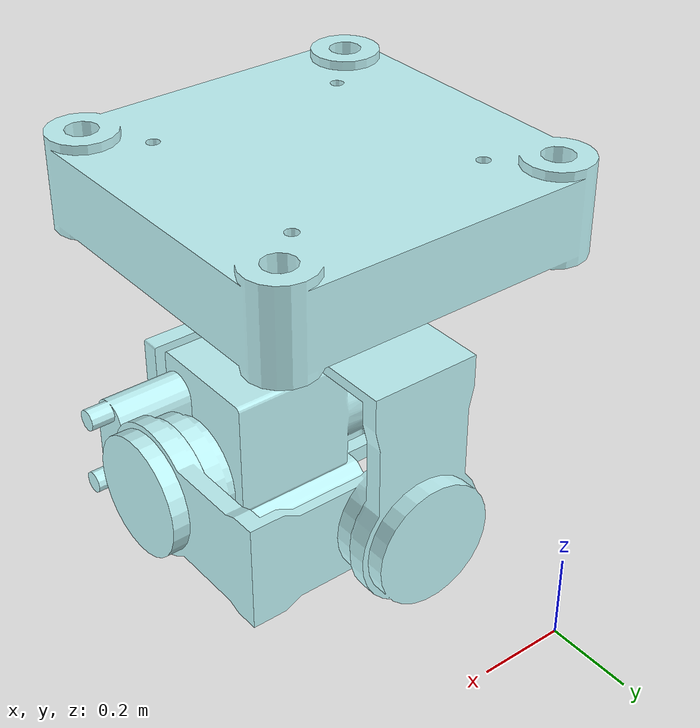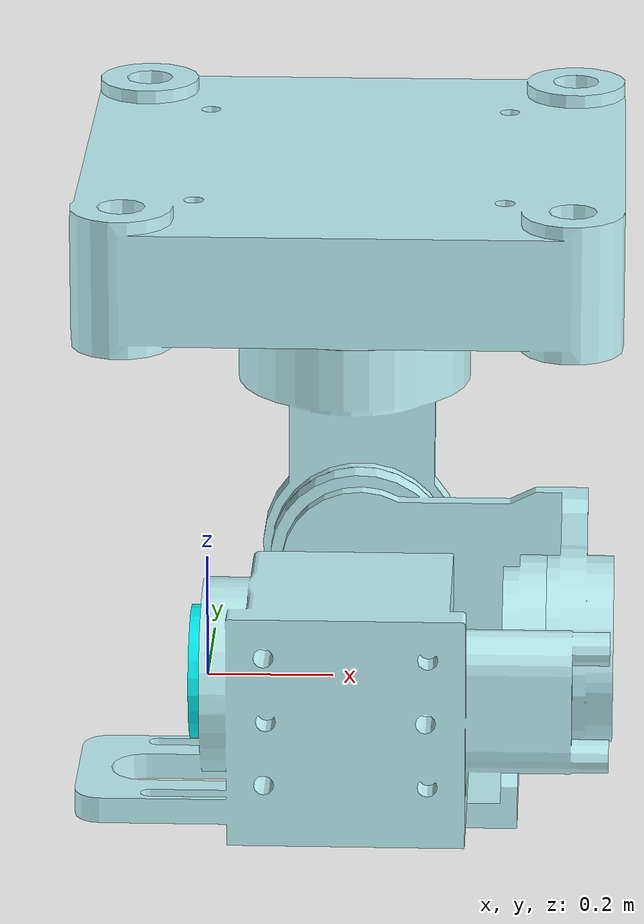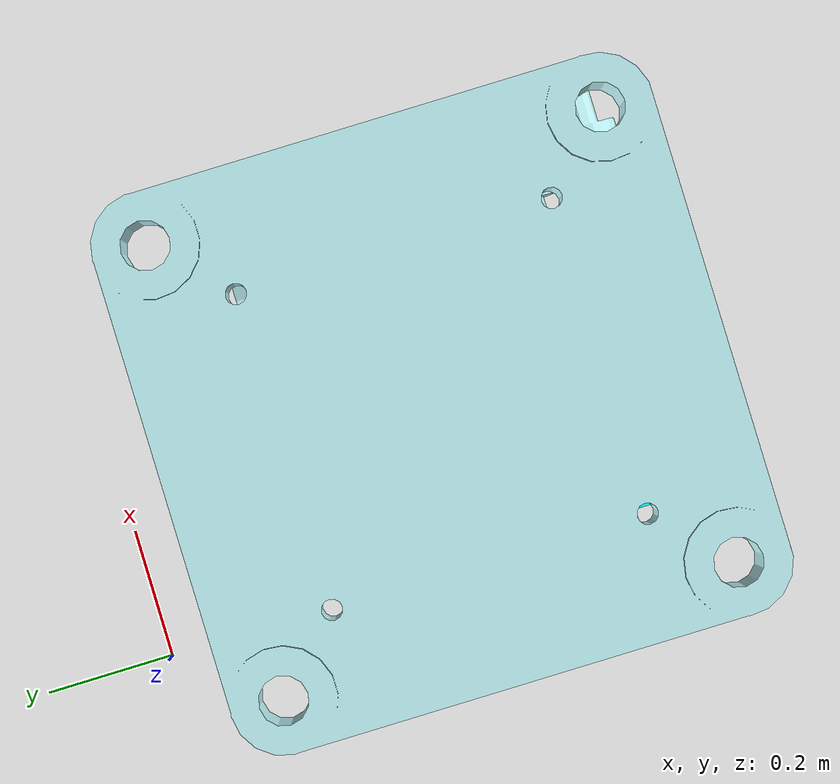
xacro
<?xml version="1.0"?>
<robot xmlns:xacro="http://www.ros.org/wiki/xacro" name="test">

   <link name="world"/>

    <link name="base_link">
        <inertial>
            <origin xyz="0.0 0.0 0.0" rpy="0.0 0.0 0.0"/>
            <mass value="0.0"/>
            <inertia ixx="0.0" ixy="0.0" ixz="0.0" iyy="0.0" iyz="0.0" izz="0.0"/>
        </inertial>
        <visual name="">
            <origin xyz="0.0 0 0.0" rpy="0.0 0.0 0.0"/>
            <geometry>
                <mesh filename="package://gimbal_urdf/meshes/base_link2.STL" scale="10 10 10"/>
            </geometry>
            <material name="">
                <color rgba="0.757 0.969 0.98 1"/>
                <texture filename=""/>
            </material>
        </visual>
        <collision>
            <origin xyz="0.0 0.0 0.0" rpy="0.0 0.0 0.0"/>
            <geometry>
                <mesh filename="package://gimbal_urdf/meshes/base_link2.STL" scale="10 10 10"/>
            </geometry>
        </collision>
    </link>

    <joint name="base_joint" type="fixed">
        <origin xyz="0.0 0.0 0.3" rpy="-0 0 -0.0"/>
        <parent link="world"/>
        <child link="base_link"/>
        <calibration rising="0.0"/>
        <dynamics damping="0.0" friction="0.0"/>
        <limit lower="-3.14" upper="3.14" effort="30" velocity="1.0"/>

    </joint>

    <link name="1st_link">
        <inertial>
            <origin xyz="0.0 0.0 0.0" rpy="0.0 0.0 0.0"/>
            <mass value="0.0"/>
            <inertia ixx="0.0" ixy="0.0" ixz="0.0" iyy="0.0" iyz="0.0" izz="0.0"/>
        </inertial>
        <visual name="">
            <origin xyz="0 0 0.0 " rpy="0.0 0.0 0.0"/>
            <geometry>
                <mesh filename="package://gimbal_urdf/meshes/1st_link2.STL" scale="10 10 10"/>
            </geometry>
            <material name="">
                <color rgba="0.757 0.969 0.98 1"/>
                <texture filename=""/>
            </material>
        </visual>
        <collision>
            <origin xyz="0.0 0.0 0.0" rpy="0.0 0.0 0.0"/>
            <geometry>
                <mesh filename="package://gimbal_urdf/meshes/1st_link2.STL" scale="10 10 10"/>
            </geometry>
        </collision>
    </link>

    <joint name="1st_to_base" type="revolute">
        <origin xyz="0.253 -0.5045 0.482" rpy="1.57079632 0 -1.57079632"/>
        <parent link="base_link"/>
        <child link="1st_link"/>
        <axis xyz="0.0 1 0.0"/>
        <limit lower="-3.14" upper="3.14" effort="0" velocity="0" />
    </joint>

    <link name="2nd_link">
        <inertial>
            <origin xyz="0.0 0.0 0.0" rpy="0.0 0.0 0.0"/>
            <mass value="0.0"/>
            <inertia ixx="0.0" ixy="0.0" ixz="0.0" iyy="0.0" iyz="0.0" izz="0.0"/>
        </inertial>
        <visual name="">
            <origin xyz="0.0 0.0 0.0" rpy="0.0 0.0 0.0"/>
            <geometry>
                <mesh filename="package://gimbal_urdf/meshes/2nd_link2.STL" scale="10 10 10"/>
            </geometry>
            <material name="">
                <color rgba="0.757 0.969 0.98 1"/>
                <texture filename=""/>
            </material>
        </visual>
        <collision>
            <origin xyz="0.0 0.0 0.0" rpy="0.0 0.0 0.0"/>
            <geometry>
                <mesh filename="package://gimbal_urdf/meshes/2nd_link2.STL" scale="10 10 10"/>
            </geometry>
        </collision>
    </link>

    <joint name="2nd_to_1st" type="revolute">
        <origin xyz="-0.283 -0.486 0" rpy="0 0 0"/>
        <parent link="1st_link"/>
        <child link="2nd_link"/>
        <axis xyz="1 0 0"/>
        <limit lower="-3.14" upper="3.14" effort="0" velocity="0" />
    </joint>

    <link name="3rd_link">
        <inertial>
            <origin xyz="0.0 0.0 0.0" rpy="0.0 0.0 0.0"/>
            <mass value="0.0"/>
            <inertia ixx="0.0" ixy="0.0" ixz="0.0" iyy="0.0" iyz="0.0" izz="0.0"/>
        </inertial>
        <visual name="">
            <origin xyz="0.0 0.0 0.0" rpy="0.0 0.0 0.0"/>
            <geometry>
                <mesh filename="package://gimbal_urdf/meshes/3rd_link2.STL" scale="10 10 10"/>
            </geometry>
            <material name="">
                <color rgba="0.757 0.969 0.98 1"/>
                <texture filename=""/>
            </material>
        </visual>
        <collision>
            <origin xyz="0.0 0.0 0.0" rpy="0.0 0.0 0.0"/>
            <geometry>
                <mesh filename="package://gimbal_urdf/meshes/3rd_link2.STL" scale="10 10 10"/>
            </geometry>
        </collision>
    </link>

    <joint name="3rd_to_2nd" type="revolute">
        <origin xyz="0.4 0.0035 -0.2915" rpy="0 -1.57079632 0"/>
        <parent link="2nd_link"/>
        <child link="3rd_link"/>
        <axis xyz="1 0 0"/>
        <limit lower="-3.14" upper="3.14" effort="0" velocity="0" />
    </joint>

    <link name="4th_link">
        <inertial>
            <origin xyz="0.0 0.0 0.0" rpy="0.0 1.5707 0.0"/>
            <mass value="0.0"/>
            <inertia ixx="0.0" ixy="0.0" ixz="0.0" iyy="0.0" iyz="0.0" izz="0.0"/>
        </inertial>
        <visual name="">
            <origin xyz="0.0 0.0 0.0" rpy="0.0 1.5707 0.0"/>
            <geometry>
                <cylinder radius="0.1" length="0.05"/>
            </geometry>
            <material name="">
                <color rgba="0 0.969 0.98 1"/>
                <texture filename=""/>
            </material>
        </visual>
    </link>

    <joint name="lens_ee" type="fixed">
        <origin xyz="0.5 0 -0.125" rpy="0 0 0"/>
        <parent link="3rd_link"/>
        <child link="4th_link"/>
    </joint>

</robot>
